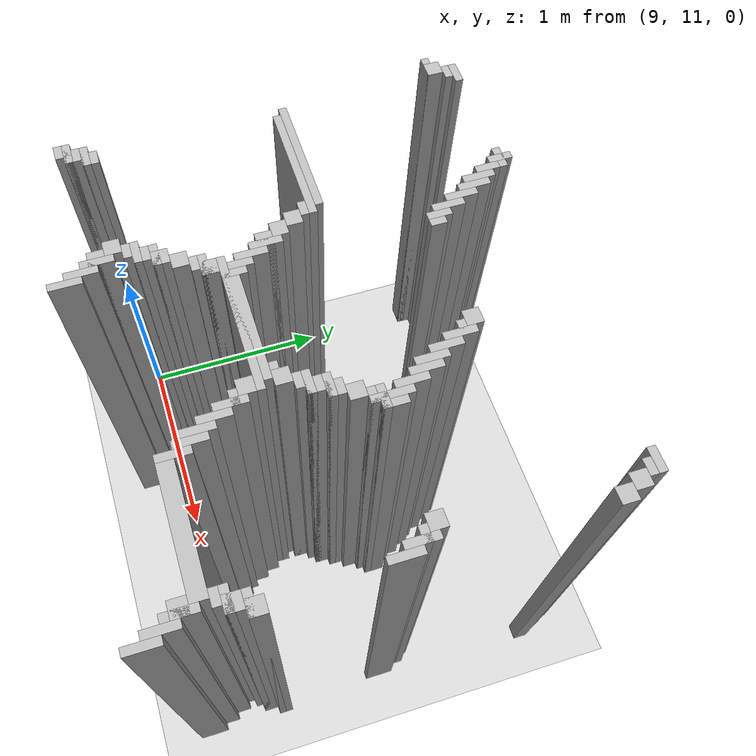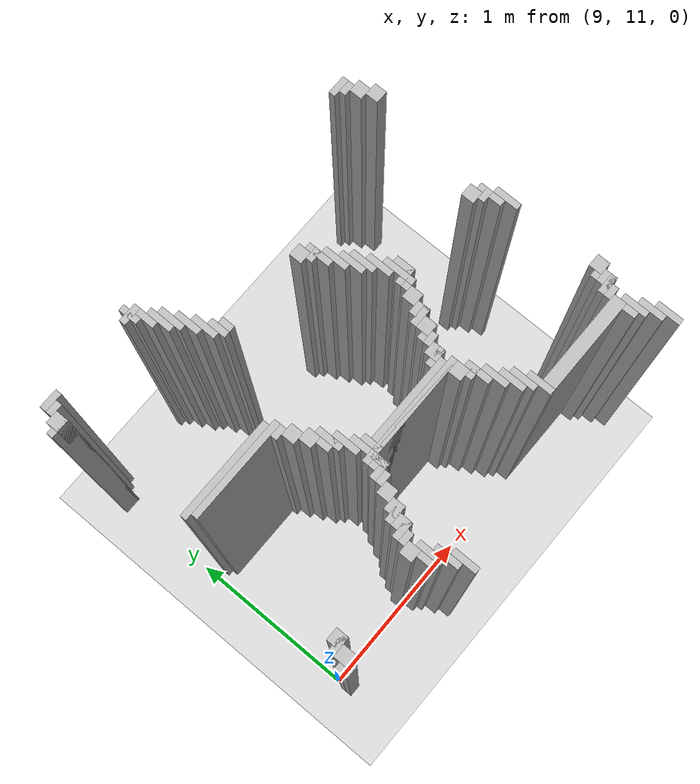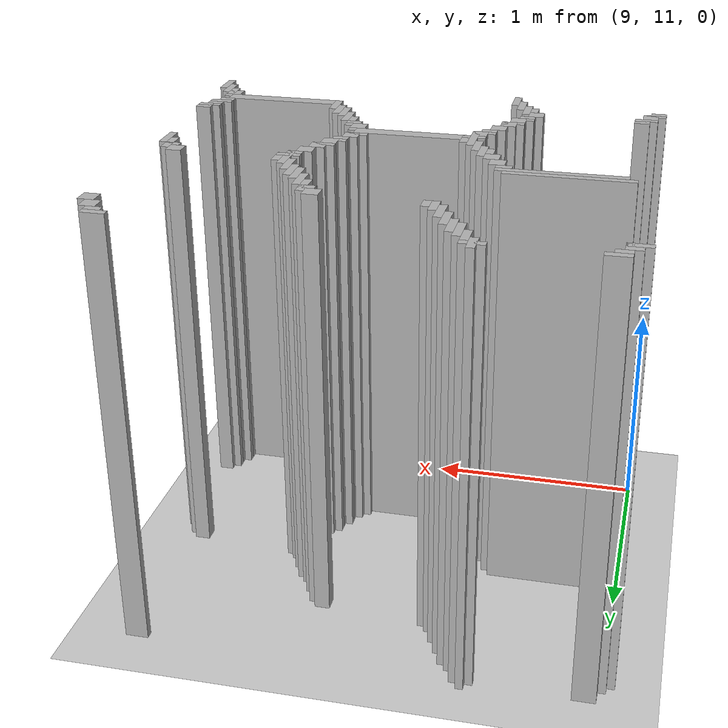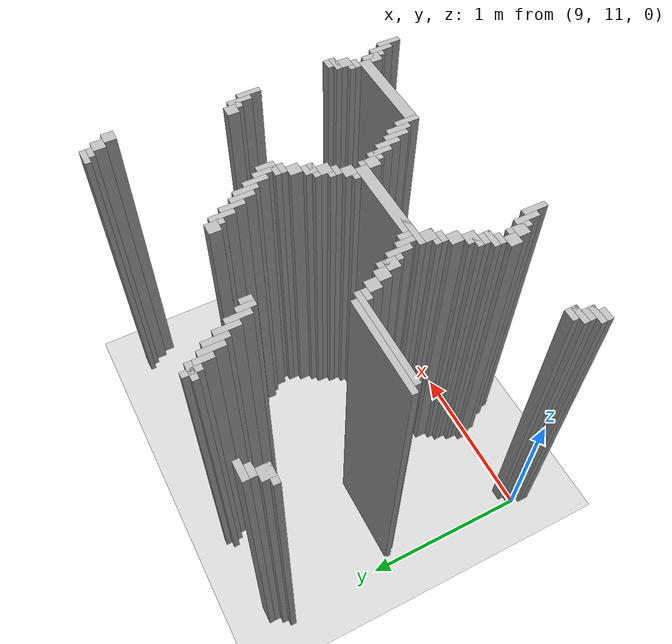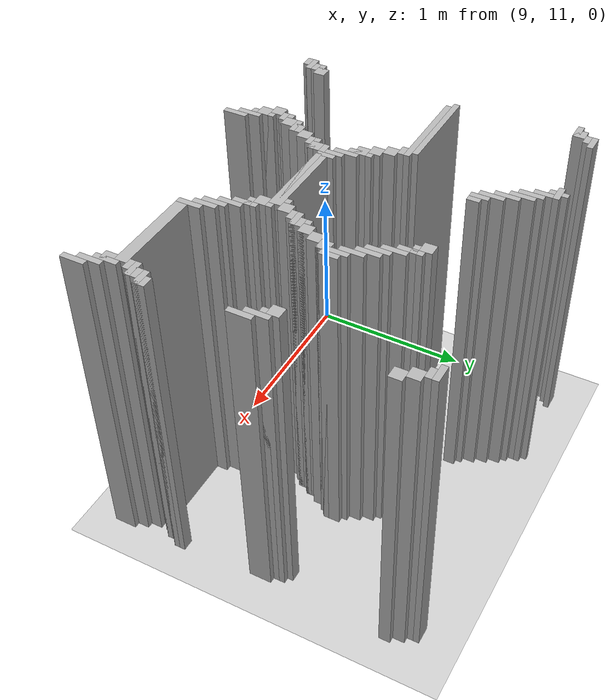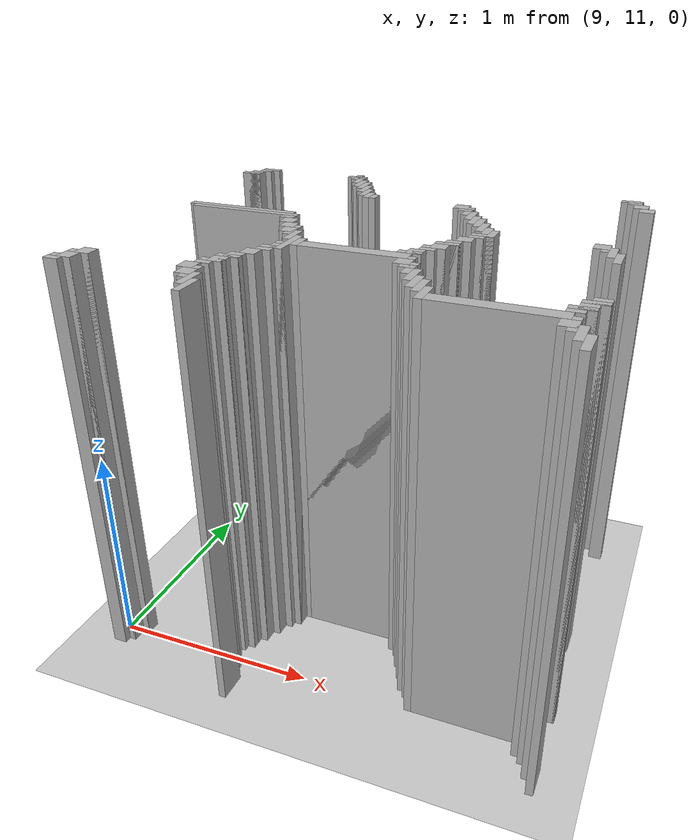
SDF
<sdf version="1.6">
 <world name="slam_world">
  <model name="ground_plane">
   <static>true</static>
   <link name="link">
    <collision name="collision">
     <geometry><plane><normal>0 0 1</normal><size>100 100</size></plane></geometry>
    </collision>
    <visual name="visual">
     <geometry><plane><normal>0 0 1</normal><size>100 100</size></plane></geometry>
     <material>
      <ambient>0.8 0.8 0.8 1</ambient>
      <diffuse>0.8 0.8 0.8 1</diffuse>
      <specular>0.8 0.8 0.8 1</specular>
     </material>
    </visual>
   </link>
  </model>
  <model name="wall_1565">
   <static>true</static>
   <pose>9.588167053364268 12.685614849187935 1.0 0 0 0</pose>
   <link name="link">
    <collision name="collision">
     <geometry><box><size>0.03480278422273782 0.10440835266821345 2.0</size></box></geometry>
    </collision>
    <visual name="visual">
     <geometry><box><size>0.03480278422273782 0.10440835266821345 2.0</size></box></geometry>
     <material><ambient>0.5 0.5 0.5 1</ambient><diffuse>0.7 0.7 0.7 1</diffuse></material>
    </visual>
   </link>
  </model>
  <model name="wall_1578">
   <static>true</static>
   <pose>9.066125290023201 12.685614849187935 1.0 0 0 0</pose>
   <link name="link">
    <collision name="collision">
     <geometry><box><size>0.10440835266821345 0.03480278422273782 2.0</size></box></geometry>
    </collision>
    <visual name="visual">
     <geometry><box><size>0.10440835266821345 0.03480278422273782 2.0</size></box></geometry>
     <material><ambient>0.5 0.5 0.5 1</ambient><diffuse>0.7 0.7 0.7 1</diffuse></material>
    </visual>
   </link>
  </model>
  <model name="wall_1579">
   <static>true</static>
   <pose>9.588167053364268 12.685614849187935 1.0 0 0 0</pose>
   <link name="link">
    <collision name="collision">
     <geometry><box><size>0.10440835266821345 0.03480278422273782 2.0</size></box></geometry>
    </collision>
    <visual name="visual">
     <geometry><box><size>0.10440835266821345 0.03480278422273782 2.0</size></box></geometry>
     <material><ambient>0.5 0.5 0.5 1</ambient><diffuse>0.7 0.7 0.7 1</diffuse></material>
    </visual>
   </link>
  </model>
  <model name="wall_1580">
   <static>true</static>
   <pose>11.049883990719257 12.685614849187935 1.0 0 0 0</pose>
   <link name="link">
    <collision name="collision">
     <geometry><box><size>0.10440835266821345 0.03480278422273782 2.0</size></box></geometry>
    </collision>
    <visual name="visual">
     <geometry><box><size>0.10440835266821345 0.03480278422273782 2.0</size></box></geometry>
     <material><ambient>0.5 0.5 0.5 1</ambient><diffuse>0.7 0.7 0.7 1</diffuse></material>
    </visual>
   </link>
  </model>
  <model name="wall_1593">
   <static>true</static>
   <pose>9.048723897911833 12.650812064965196 1.0 0 0 0</pose>
   <link name="link">
    <collision name="collision">
     <geometry><box><size>0.06960556844547564 0.03480278422273782 2.0</size></box></geometry>
    </collision>
    <visual name="visual">
     <geometry><box><size>0.06960556844547564 0.03480278422273782 2.0</size></box></geometry>
     <material><ambient>0.5 0.5 0.5 1</ambient><diffuse>0.7 0.7 0.7 1</diffuse></material>
    </visual>
   </link>
  </model>
  <model name="wall_1594">
   <static>true</static>
   <pose>9.622969837587007 12.616009280742459 1.0 0 0 0</pose>
   <link name="link">
    <collision name="collision">
     <geometry><box><size>0.03480278422273782 0.10440835266821345 2.0</size></box></geometry>
    </collision>
    <visual name="visual">
     <geometry><box><size>0.03480278422273782 0.10440835266821345 2.0</size></box></geometry>
     <material><ambient>0.5 0.5 0.5 1</ambient><diffuse>0.7 0.7 0.7 1</diffuse></material>
    </visual>
   </link>
  </model>
  <model name="wall_1595">
   <static>true</static>
   <pose>11.067285382830626 12.650812064965196 1.0 0 0 0</pose>
   <link name="link">
    <collision name="collision">
     <geometry><box><size>0.06960556844547564 0.03480278422273782 2.0</size></box></geometry>
    </collision>
    <visual name="visual">
     <geometry><box><size>0.06960556844547564 0.03480278422273782 2.0</size></box></geometry>
     <material><ambient>0.5 0.5 0.5 1</ambient><diffuse>0.7 0.7 0.7 1</diffuse></material>
    </visual>
   </link>
  </model>
  <model name="wall_1608">
   <static>true</static>
   <pose>9.013921113689095 12.59860788863109 1.0 0 0 0</pose>
   <link name="link">
    <collision name="collision">
     <geometry><box><size>0.06960556844547564 0.06960556844547564 2.0</size></box></geometry>
    </collision>
    <visual name="visual">
     <geometry><box><size>0.06960556844547564 0.06960556844547564 2.0</size></box></geometry>
     <material><ambient>0.5 0.5 0.5 1</ambient><diffuse>0.7 0.7 0.7 1</diffuse></material>
    </visual>
   </link>
  </model>
  <model name="wall_1609">
   <static>true</static>
   <pose>9.657772621809745 12.563805104408353 1.0 0 0 0</pose>
   <link name="link">
    <collision name="collision">
     <geometry><box><size>0.03480278422273782 0.13921113689095127 2.0</size></box></geometry>
    </collision>
    <visual name="visual">
     <geometry><box><size>0.03480278422273782 0.13921113689095127 2.0</size></box></geometry>
     <material><ambient>0.5 0.5 0.5 1</ambient><diffuse>0.7 0.7 0.7 1</diffuse></material>
    </visual>
   </link>
  </model>
  <model name="wall_1610">
   <static>true</static>
   <pose>11.102088167053363 12.59860788863109 1.0 0 0 0</pose>
   <link name="link">
    <collision name="collision">
     <geometry><box><size>0.06960556844547564 0.06960556844547564 2.0</size></box></geometry>
    </collision>
    <visual name="visual">
     <geometry><box><size>0.06960556844547564 0.06960556844547564 2.0</size></box></geometry>
     <material><ambient>0.5 0.5 0.5 1</ambient><diffuse>0.7 0.7 0.7 1</diffuse></material>
    </visual>
   </link>
  </model>
  <model name="wall_1625">
   <static>true</static>
   <pose>8.996519721577727 12.581206496519721 1.0 0 0 0</pose>
   <link name="link">
    <collision name="collision">
     <geometry><box><size>0.10440835266821345 0.03480278422273782 2.0</size></box></geometry>
    </collision>
    <visual name="visual">
     <geometry><box><size>0.10440835266821345 0.03480278422273782 2.0</size></box></geometry>
     <material><ambient>0.5 0.5 0.5 1</ambient><diffuse>0.7 0.7 0.7 1</diffuse></material>
    </visual>
   </link>
  </model>
  <model name="wall_1626">
   <static>true</static>
   <pose>9.692575406032482 12.529002320185615 1.0 0 0 0</pose>
   <link name="link">
    <collision name="collision">
     <geometry><box><size>0.03480278422273782 0.13921113689095127 2.0</size></box></geometry>
    </collision>
    <visual name="visual">
     <geometry><box><size>0.03480278422273782 0.13921113689095127 2.0</size></box></geometry>
     <material><ambient>0.5 0.5 0.5 1</ambient><diffuse>0.7 0.7 0.7 1</diffuse></material>
    </visual>
   </link>
  </model>
  <model name="wall_1639">
   <static>true</static>
   <pose>11.1368909512761 12.529002320185615 1.0 0 0 0</pose>
   <link name="link">
    <collision name="collision">
     <geometry><box><size>0.06960556844547564 0.06960556844547564 2.0</size></box></geometry>
    </collision>
    <visual name="visual">
     <geometry><box><size>0.06960556844547564 0.06960556844547564 2.0</size></box></geometry>
     <material><ambient>0.5 0.5 0.5 1</ambient><diffuse>0.7 0.7 0.7 1</diffuse></material>
    </visual>
   </link>
  </model>
  <model name="wall_1654">
   <static>true</static>
   <pose>9.72737819025522 12.459396751740138 1.0 0 0 0</pose>
   <link name="link">
    <collision name="collision">
     <geometry><box><size>0.03480278422273782 0.13921113689095127 2.0</size></box></geometry>
    </collision>
    <visual name="visual">
     <geometry><box><size>0.03480278422273782 0.13921113689095127 2.0</size></box></geometry>
     <material><ambient>0.5 0.5 0.5 1</ambient><diffuse>0.7 0.7 0.7 1</diffuse></material>
    </visual>
   </link>
  </model>
  <model name="wall_1680">
   <static>true</static>
   <pose>9.762180974477959 12.389791183294664 1.0 0 0 0</pose>
   <link name="link">
    <collision name="collision">
     <geometry><box><size>0.03480278422273782 0.13921113689095127 2.0</size></box></geometry>
    </collision>
    <visual name="visual">
     <geometry><box><size>0.03480278422273782 0.13921113689095127 2.0</size></box></geometry>
     <material><ambient>0.5 0.5 0.5 1</ambient><diffuse>0.7 0.7 0.7 1</diffuse></material>
    </visual>
   </link>
  </model>
  <model name="wall_1697">
   <static>true</static>
   <pose>9.796983758700696 12.337587006960556 1.0 0 0 0</pose>
   <link name="link">
    <collision name="collision">
     <geometry><box><size>0.03480278422273782 0.10440835266821345 2.0</size></box></geometry>
    </collision>
    <visual name="visual">
     <geometry><box><size>0.03480278422273782 0.10440835266821345 2.0</size></box></geometry>
     <material><ambient>0.5 0.5 0.5 1</ambient><diffuse>0.7 0.7 0.7 1</diffuse></material>
    </visual>
   </link>
  </model>
  <model name="wall_1713">
   <static>true</static>
   <pose>9.831786542923433 12.320185614849187 1.0 0 0 0</pose>
   <link name="link">
    <collision name="collision">
     <geometry><box><size>0.03480278422273782 0.06960556844547564 2.0</size></box></geometry>
    </collision>
    <visual name="visual">
     <geometry><box><size>0.03480278422273782 0.06960556844547564 2.0</size></box></geometry>
     <material><ambient>0.5 0.5 0.5 1</ambient><diffuse>0.7 0.7 0.7 1</diffuse></material>
    </visual>
   </link>
  </model>
  <model name="wall_1727">
   <static>true</static>
   <pose>10.301624129930394 12.28538283062645 1.0 0 0 0</pose>
   <link name="link">
    <collision name="collision">
     <geometry><box><size>0.06960556844547564 0.06960556844547564 2.0</size></box></geometry>
    </collision>
    <visual name="visual">
     <geometry><box><size>0.06960556844547564 0.06960556844547564 2.0</size></box></geometry>
     <material><ambient>0.5 0.5 0.5 1</ambient><diffuse>0.7 0.7 0.7 1</diffuse></material>
    </visual>
   </link>
  </model>
  <model name="wall_1743">
   <static>true</static>
   <pose>10.3538283062645 12.215777262180975 1.0 0 0 0</pose>
   <link name="link">
    <collision name="collision">
     <geometry><box><size>0.03480278422273782 0.13921113689095127 2.0</size></box></geometry>
    </collision>
    <visual name="visual">
     <geometry><box><size>0.03480278422273782 0.13921113689095127 2.0</size></box></geometry>
     <material><ambient>0.5 0.5 0.5 1</ambient><diffuse>0.7 0.7 0.7 1</diffuse></material>
    </visual>
   </link>
  </model>
  <model name="wall_1761">
   <static>true</static>
   <pose>10.336426914153131 12.233178654292344 1.0 0 0 0</pose>
   <link name="link">
    <collision name="collision">
     <geometry><box><size>0.06960556844547564 0.03480278422273782 2.0</size></box></geometry>
    </collision>
    <visual name="visual">
     <geometry><box><size>0.06960556844547564 0.03480278422273782 2.0</size></box></geometry>
     <material><ambient>0.5 0.5 0.5 1</ambient><diffuse>0.7 0.7 0.7 1</diffuse></material>
    </visual>
   </link>
  </model>
  <model name="wall_1777">
   <static>true</static>
   <pose>10.38863109048724 12.146171693735498 1.0 0 0 0</pose>
   <link name="link">
    <collision name="collision">
     <geometry><box><size>0.03480278422273782 0.13921113689095127 2.0</size></box></geometry>
    </collision>
    <visual name="visual">
     <geometry><box><size>0.03480278422273782 0.13921113689095127 2.0</size></box></geometry>
     <material><ambient>0.5 0.5 0.5 1</ambient><diffuse>0.7 0.7 0.7 1</diffuse></material>
    </visual>
   </link>
  </model>
  <model name="wall_1793">
   <static>true</static>
   <pose>10.423433874709977 12.076566125290023 1.0 0 0 0</pose>
   <link name="link">
    <collision name="collision">
     <geometry><box><size>0.03480278422273782 0.13921113689095127 2.0</size></box></geometry>
    </collision>
    <visual name="visual">
     <geometry><box><size>0.03480278422273782 0.13921113689095127 2.0</size></box></geometry>
     <material><ambient>0.5 0.5 0.5 1</ambient><diffuse>0.7 0.7 0.7 1</diffuse></material>
    </visual>
   </link>
  </model>
  <model name="wall_1809">
   <static>true</static>
   <pose>10.458236658932714 12.041763341067284 1.0 0 0 0</pose>
   <link name="link">
    <collision name="collision">
     <geometry><box><size>0.03480278422273782 0.13921113689095127 2.0</size></box></geometry>
    </collision>
    <visual name="visual">
     <geometry><box><size>0.03480278422273782 0.13921113689095127 2.0</size></box></geometry>
     <material><ambient>0.5 0.5 0.5 1</ambient><diffuse>0.7 0.7 0.7 1</diffuse></material>
    </visual>
   </link>
  </model>
  <model name="wall_1835">
   <static>true</static>
   <pose>10.493039443155451 11.97215777262181 1.0 0 0 0</pose>
   <link name="link">
    <collision name="collision">
     <geometry><box><size>0.03480278422273782 0.13921113689095127 2.0</size></box></geometry>
    </collision>
    <visual name="visual">
     <geometry><box><size>0.03480278422273782 0.13921113689095127 2.0</size></box></geometry>
     <material><ambient>0.5 0.5 0.5 1</ambient><diffuse>0.7 0.7 0.7 1</diffuse></material>
    </visual>
   </link>
  </model>
  <model name="wall_1859">
   <static>true</static>
   <pose>10.52784222737819 11.885150812064964 1.0 0 0 0</pose>
   <link name="link">
    <collision name="collision">
     <geometry><box><size>0.03480278422273782 0.17401392111368907 2.0</size></box></geometry>
    </collision>
    <visual name="visual">
     <geometry><box><size>0.03480278422273782 0.17401392111368907 2.0</size></box></geometry>
     <material><ambient>0.5 0.5 0.5 1</ambient><diffuse>0.7 0.7 0.7 1</diffuse></material>
    </visual>
   </link>
  </model>
  <model name="wall_1875">
   <static>true</static>
   <pose>10.562645011600928 11.885150812064964 1.0 0 0 0</pose>
   <link name="link">
    <collision name="collision">
     <geometry><box><size>0.03480278422273782 0.10440835266821345 2.0</size></box></geometry>
    </collision>
    <visual name="visual">
     <geometry><box><size>0.03480278422273782 0.10440835266821345 2.0</size></box></geometry>
     <material><ambient>0.5 0.5 0.5 1</ambient><diffuse>0.7 0.7 0.7 1</diffuse></material>
    </visual>
   </link>
  </model>
  <model name="wall_1885">
   <static>true</static>
   <pose>9.327146171693736 11.885150812064964 1.0 0 0 0</pose>
   <link name="link">
    <collision name="collision">
     <geometry><box><size>0.5568445475638051 0.03480278422273782 2.0</size></box></geometry>
    </collision>
    <visual name="visual">
     <geometry><box><size>0.5568445475638051 0.03480278422273782 2.0</size></box></geometry>
     <material><ambient>0.5 0.5 0.5 1</ambient><diffuse>0.7 0.7 0.7 1</diffuse></material>
    </visual>
   </link>
  </model>
  <model name="wall_1886">
   <static>true</static>
   <pose>11.032482598607888 11.867749419953595 1.0 0 0 0</pose>
   <link name="link">
    <collision name="collision">
     <geometry><box><size>0.06960556844547564 0.06960556844547564 2.0</size></box></geometry>
    </collision>
    <visual name="visual">
     <geometry><box><size>0.06960556844547564 0.06960556844547564 2.0</size></box></geometry>
     <material><ambient>0.5 0.5 0.5 1</ambient><diffuse>0.7 0.7 0.7 1</diffuse></material>
    </visual>
   </link>
  </model>
  <model name="wall_1897">
   <static>true</static>
   <pose>9.361948955916473 11.850348027842227 1.0 0 0 0</pose>
   <link name="link">
    <collision name="collision">
     <geometry><box><size>0.5568445475638051 0.03480278422273782 2.0</size></box></geometry>
    </collision>
    <visual name="visual">
     <geometry><box><size>0.5568445475638051 0.03480278422273782 2.0</size></box></geometry>
     <material><ambient>0.5 0.5 0.5 1</ambient><diffuse>0.7 0.7 0.7 1</diffuse></material>
    </visual>
   </link>
  </model>
  <model name="wall_1898">
   <static>true</static>
   <pose>10.52784222737819 11.850348027842227 1.0 0 0 0</pose>
   <link name="link">
    <collision name="collision">
     <geometry><box><size>0.10440835266821345 0.03480278422273782 2.0</size></box></geometry>
    </collision>
    <visual name="visual">
     <geometry><box><size>0.10440835266821345 0.03480278422273782 2.0</size></box></geometry>
     <material><ambient>0.5 0.5 0.5 1</ambient><diffuse>0.7 0.7 0.7 1</diffuse></material>
    </visual>
   </link>
  </model>
  <model name="wall_1899">
   <static>true</static>
   <pose>11.084686774941995 11.79814385150812 1.0 0 0 0</pose>
   <link name="link">
    <collision name="collision">
     <geometry><box><size>0.03480278422273782 0.13921113689095127 2.0</size></box></geometry>
    </collision>
    <visual name="visual">
     <geometry><box><size>0.03480278422273782 0.13921113689095127 2.0</size></box></geometry>
     <material><ambient>0.5 0.5 0.5 1</ambient><diffuse>0.7 0.7 0.7 1</diffuse></material>
    </visual>
   </link>
  </model>
  <model name="wall_1912">
   <static>true</static>
   <pose>9.605568445475638 11.81554524361949 1.0 0 0 0</pose>
   <link name="link">
    <collision name="collision">
     <geometry><box><size>0.06960556844547564 0.03480278422273782 2.0</size></box></geometry>
    </collision>
    <visual name="visual">
     <geometry><box><size>0.06960556844547564 0.03480278422273782 2.0</size></box></geometry>
     <material><ambient>0.5 0.5 0.5 1</ambient><diffuse>0.7 0.7 0.7 1</diffuse></material>
    </visual>
   </link>
  </model>
  <model name="wall_1913">
   <static>true</static>
   <pose>10.51044083526682 11.81554524361949 1.0 0 0 0</pose>
   <link name="link">
    <collision name="collision">
     <geometry><box><size>0.06960556844547564 0.03480278422273782 2.0</size></box></geometry>
    </collision>
    <visual name="visual">
     <geometry><box><size>0.06960556844547564 0.03480278422273782 2.0</size></box></geometry>
     <material><ambient>0.5 0.5 0.5 1</ambient><diffuse>0.7 0.7 0.7 1</diffuse></material>
    </visual>
   </link>
  </model>
  <model name="wall_1914">
   <static>true</static>
   <pose>11.067285382830626 11.81554524361949 1.0 0 0 0</pose>
   <link name="link">
    <collision name="collision">
     <geometry><box><size>0.06960556844547564 0.03480278422273782 2.0</size></box></geometry>
    </collision>
    <visual name="visual">
     <geometry><box><size>0.06960556844547564 0.03480278422273782 2.0</size></box></geometry>
     <material><ambient>0.5 0.5 0.5 1</ambient><diffuse>0.7 0.7 0.7 1</diffuse></material>
    </visual>
   </link>
  </model>
  <model name="wall_1928">
   <static>true</static>
   <pose>9.640371229698376 11.763341067285383 1.0 0 0 0</pose>
   <link name="link">
    <collision name="collision">
     <geometry><box><size>0.06960556844547564 0.06960556844547564 2.0</size></box></geometry>
    </collision>
    <visual name="visual">
     <geometry><box><size>0.06960556844547564 0.06960556844547564 2.0</size></box></geometry>
     <material><ambient>0.5 0.5 0.5 1</ambient><diffuse>0.7 0.7 0.7 1</diffuse></material>
    </visual>
   </link>
  </model>
  <model name="wall_1929">
   <static>true</static>
   <pose>10.475638051044083 11.763341067285383 1.0 0 0 0</pose>
   <link name="link">
    <collision name="collision">
     <geometry><box><size>0.06960556844547564 0.06960556844547564 2.0</size></box></geometry>
    </collision>
    <visual name="visual">
     <geometry><box><size>0.06960556844547564 0.06960556844547564 2.0</size></box></geometry>
     <material><ambient>0.5 0.5 0.5 1</ambient><diffuse>0.7 0.7 0.7 1</diffuse></material>
    </visual>
   </link>
  </model>
  <model name="wall_1930">
   <static>true</static>
   <pose>11.119489559164732 11.728538283062644 1.0 0 0 0</pose>
   <link name="link">
    <collision name="collision">
     <geometry><box><size>0.03480278422273782 0.13921113689095127 2.0</size></box></geometry>
    </collision>
    <visual name="visual">
     <geometry><box><size>0.03480278422273782 0.13921113689095127 2.0</size></box></geometry>
     <material><ambient>0.5 0.5 0.5 1</ambient><diffuse>0.7 0.7 0.7 1</diffuse></material>
    </visual>
   </link>
  </model>
  <model name="wall_1944">
   <static>true</static>
   <pose>9.675174013921113 11.693735498839906 1.0 0 0 0</pose>
   <link name="link">
    <collision name="collision">
     <geometry><box><size>0.06960556844547564 0.06960556844547564 2.0</size></box></geometry>
    </collision>
    <visual name="visual">
     <geometry><box><size>0.06960556844547564 0.06960556844547564 2.0</size></box></geometry>
     <material><ambient>0.5 0.5 0.5 1</ambient><diffuse>0.7 0.7 0.7 1</diffuse></material>
    </visual>
   </link>
  </model>
  <model name="wall_1945">
   <static>true</static>
   <pose>10.440835266821345 11.693735498839906 1.0 0 0 0</pose>
   <link name="link">
    <collision name="collision">
     <geometry><box><size>0.06960556844547564 0.06960556844547564 2.0</size></box></geometry>
    </collision>
    <visual name="visual">
     <geometry><box><size>0.06960556844547564 0.06960556844547564 2.0</size></box></geometry>
     <material><ambient>0.5 0.5 0.5 1</ambient><diffuse>0.7 0.7 0.7 1</diffuse></material>
    </visual>
   </link>
  </model>
  <model name="wall_1960">
   <static>true</static>
   <pose>9.72737819025522 11.624129930394432 1.0 0 0 0</pose>
   <link name="link">
    <collision name="collision">
     <geometry><box><size>0.03480278422273782 0.13921113689095127 2.0</size></box></geometry>
    </collision>
    <visual name="visual">
     <geometry><box><size>0.03480278422273782 0.13921113689095127 2.0</size></box></geometry>
     <material><ambient>0.5 0.5 0.5 1</ambient><diffuse>0.7 0.7 0.7 1</diffuse></material>
    </visual>
   </link>
  </model>
  <model name="wall_1961">
   <static>true</static>
   <pose>10.423433874709977 11.676334106728538 1.0 0 0 0</pose>
   <link name="link">
    <collision name="collision">
     <geometry><box><size>0.10440835266821345 0.03480278422273782 2.0</size></box></geometry>
    </collision>
    <visual name="visual">
     <geometry><box><size>0.10440835266821345 0.03480278422273782 2.0</size></box></geometry>
     <material><ambient>0.5 0.5 0.5 1</ambient><diffuse>0.7 0.7 0.7 1</diffuse></material>
    </visual>
   </link>
  </model>
  <model name="wall_1972">
   <static>true</static>
   <pose>9.70997679814385 11.624129930394432 1.0 0 0 0</pose>
   <link name="link">
    <collision name="collision">
     <geometry><box><size>0.06960556844547564 0.06960556844547564 2.0</size></box></geometry>
    </collision>
    <visual name="visual">
     <geometry><box><size>0.06960556844547564 0.06960556844547564 2.0</size></box></geometry>
     <material><ambient>0.5 0.5 0.5 1</ambient><diffuse>0.7 0.7 0.7 1</diffuse></material>
    </visual>
   </link>
  </model>
  <model name="wall_1973">
   <static>true</static>
   <pose>10.406032482598608 11.624129930394432 1.0 0 0 0</pose>
   <link name="link">
    <collision name="collision">
     <geometry><box><size>0.06960556844547564 0.06960556844547564 2.0</size></box></geometry>
    </collision>
    <visual name="visual">
     <geometry><box><size>0.06960556844547564 0.06960556844547564 2.0</size></box></geometry>
     <material><ambient>0.5 0.5 0.5 1</ambient><diffuse>0.7 0.7 0.7 1</diffuse></material>
    </visual>
   </link>
  </model>
  <model name="wall_1986">
   <static>true</static>
   <pose>9.762180974477959 11.554524361948955 1.0 0 0 0</pose>
   <link name="link">
    <collision name="collision">
     <geometry><box><size>0.03480278422273782 0.13921113689095127 2.0</size></box></geometry>
    </collision>
    <visual name="visual">
     <geometry><box><size>0.03480278422273782 0.13921113689095127 2.0</size></box></geometry>
     <material><ambient>0.5 0.5 0.5 1</ambient><diffuse>0.7 0.7 0.7 1</diffuse></material>
    </visual>
   </link>
  </model>
  <model name="wall_1987">
   <static>true</static>
   <pose>10.38863109048724 11.606728538283063 1.0 0 0 0</pose>
   <link name="link">
    <collision name="collision">
     <geometry><box><size>0.10440835266821345 0.03480278422273782 2.0</size></box></geometry>
    </collision>
    <visual name="visual">
     <geometry><box><size>0.10440835266821345 0.03480278422273782 2.0</size></box></geometry>
     <material><ambient>0.5 0.5 0.5 1</ambient><diffuse>0.7 0.7 0.7 1</diffuse></material>
    </visual>
   </link>
  </model>
  <model name="wall_1997">
   <static>true</static>
   <pose>10.37122969837587 11.571925754060324 1.0 0 0 0</pose>
   <link name="link">
    <collision name="collision">
     <geometry><box><size>0.06960556844547564 0.03480278422273782 2.0</size></box></geometry>
    </collision>
    <visual name="visual">
     <geometry><box><size>0.06960556844547564 0.03480278422273782 2.0</size></box></geometry>
     <material><ambient>0.5 0.5 0.5 1</ambient><diffuse>0.7 0.7 0.7 1</diffuse></material>
    </visual>
   </link>
  </model>
  <model name="wall_2009">
   <static>true</static>
   <pose>9.796983758700696 11.450116009280743 1.0 0 0 0</pose>
   <link name="link">
    <collision name="collision">
     <geometry><box><size>0.03480278422273782 0.2088167053364269 2.0</size></box></geometry>
    </collision>
    <visual name="visual">
     <geometry><box><size>0.03480278422273782 0.2088167053364269 2.0</size></box></geometry>
     <material><ambient>0.5 0.5 0.5 1</ambient><diffuse>0.7 0.7 0.7 1</diffuse></material>
    </visual>
   </link>
  </model>
  <model name="wall_2010">
   <static>true</static>
   <pose>10.336426914153131 11.519721577726218 1.0 0 0 0</pose>
   <link name="link">
    <collision name="collision">
     <geometry><box><size>0.06960556844547564 0.06960556844547564 2.0</size></box></geometry>
    </collision>
    <visual name="visual">
     <geometry><box><size>0.06960556844547564 0.06960556844547564 2.0</size></box></geometry>
     <material><ambient>0.5 0.5 0.5 1</ambient><diffuse>0.7 0.7 0.7 1</diffuse></material>
    </visual>
   </link>
  </model>
  <model name="wall_2024">
   <static>true</static>
   <pose>9.831786542923433 11.467517401392112 1.0 0 0 0</pose>
   <link name="link">
    <collision name="collision">
     <geometry><box><size>0.03480278422273782 0.10440835266821345 2.0</size></box></geometry>
    </collision>
    <visual name="visual">
     <geometry><box><size>0.03480278422273782 0.10440835266821345 2.0</size></box></geometry>
     <material><ambient>0.5 0.5 0.5 1</ambient><diffuse>0.7 0.7 0.7 1</diffuse></material>
    </visual>
   </link>
  </model>
  <model name="wall_2025">
   <static>true</static>
   <pose>10.319025522041763 11.502320185614849 1.0 0 0 0</pose>
   <link name="link">
    <collision name="collision">
     <geometry><box><size>0.10440835266821345 0.03480278422273782 2.0</size></box></geometry>
    </collision>
    <visual name="visual">
     <geometry><box><size>0.10440835266821345 0.03480278422273782 2.0</size></box></geometry>
     <material><ambient>0.5 0.5 0.5 1</ambient><diffuse>0.7 0.7 0.7 1</diffuse></material>
    </visual>
   </link>
  </model>
  <model name="wall_2039">
   <static>true</static>
   <pose>10.092807424593968 11.450116009280743 1.0 0 0 0</pose>
   <link name="link">
    <collision name="collision">
     <geometry><box><size>0.4872389791183295 0.06960556844547564 2.0</size></box></geometry>
    </collision>
    <visual name="visual">
     <geometry><box><size>0.4872389791183295 0.06960556844547564 2.0</size></box></geometry>
     <material><ambient>0.5 0.5 0.5 1</ambient><diffuse>0.7 0.7 0.7 1</diffuse></material>
    </visual>
   </link>
  </model>
  <model name="wall_2050">
   <static>true</static>
   <pose>10.058004640371228 11.432714617169372 1.0 0 0 0</pose>
   <link name="link">
    <collision name="collision">
     <geometry><box><size>0.6264501160092807 0.03480278422273782 2.0</size></box></geometry>
    </collision>
    <visual name="visual">
     <geometry><box><size>0.6264501160092807 0.03480278422273782 2.0</size></box></geometry>
     <material><ambient>0.5 0.5 0.5 1</ambient><diffuse>0.7 0.7 0.7 1</diffuse></material>
    </visual>
   </link>
  </model>
  <model name="wall_2061">
   <static>true</static>
   <pose>9.779582366589327 11.380510440835266 1.0 0 0 0</pose>
   <link name="link">
    <collision name="collision">
     <geometry><box><size>0.06960556844547564 0.06960556844547564 2.0</size></box></geometry>
    </collision>
    <visual name="visual">
     <geometry><box><size>0.06960556844547564 0.06960556844547564 2.0</size></box></geometry>
     <material><ambient>0.5 0.5 0.5 1</ambient><diffuse>0.7 0.7 0.7 1</diffuse></material>
    </visual>
   </link>
  </model>
  <model name="wall_2062">
   <static>true</static>
   <pose>10.336426914153131 11.380510440835266 1.0 0 0 0</pose>
   <link name="link">
    <collision name="collision">
     <geometry><box><size>0.06960556844547564 0.06960556844547564 2.0</size></box></geometry>
    </collision>
    <visual name="visual">
     <geometry><box><size>0.06960556844547564 0.06960556844547564 2.0</size></box></geometry>
     <material><ambient>0.5 0.5 0.5 1</ambient><diffuse>0.7 0.7 0.7 1</diffuse></material>
    </visual>
   </link>
  </model>
  <model name="wall_2073">
   <static>true</static>
   <pose>9.762180974477959 11.363109048723897 1.0 0 0 0</pose>
   <link name="link">
    <collision name="collision">
     <geometry><box><size>0.10440835266821345 0.03480278422273782 2.0</size></box></geometry>
    </collision>
    <visual name="visual">
     <geometry><box><size>0.10440835266821345 0.03480278422273782 2.0</size></box></geometry>
     <material><ambient>0.5 0.5 0.5 1</ambient><diffuse>0.7 0.7 0.7 1</diffuse></material>
    </visual>
   </link>
  </model>
  <model name="wall_2074">
   <static>true</static>
   <pose>10.38863109048724 11.310904872389791 1.0 0 0 0</pose>
   <link name="link">
    <collision name="collision">
     <geometry><box><size>0.03480278422273782 0.13921113689095127 2.0</size></box></geometry>
    </collision>
    <visual name="visual">
     <geometry><box><size>0.03480278422273782 0.13921113689095127 2.0</size></box></geometry>
     <material><ambient>0.5 0.5 0.5 1</ambient><diffuse>0.7 0.7 0.7 1</diffuse></material>
    </visual>
   </link>
  </model>
  <model name="wall_2082">
   <static>true</static>
   <pose>9.744779582366588 11.32830626450116 1.0 0 0 0</pose>
   <link name="link">
    <collision name="collision">
     <geometry><box><size>0.06960556844547564 0.03480278422273782 2.0</size></box></geometry>
    </collision>
    <visual name="visual">
     <geometry><box><size>0.06960556844547564 0.03480278422273782 2.0</size></box></geometry>
     <material><ambient>0.5 0.5 0.5 1</ambient><diffuse>0.7 0.7 0.7 1</diffuse></material>
    </visual>
   </link>
  </model>
  <model name="wall_2083">
   <static>true</static>
   <pose>10.37122969837587 11.32830626450116 1.0 0 0 0</pose>
   <link name="link">
    <collision name="collision">
     <geometry><box><size>0.06960556844547564 0.03480278422273782 2.0</size></box></geometry>
    </collision>
    <visual name="visual">
     <geometry><box><size>0.06960556844547564 0.03480278422273782 2.0</size></box></geometry>
     <material><ambient>0.5 0.5 0.5 1</ambient><diffuse>0.7 0.7 0.7 1</diffuse></material>
    </visual>
   </link>
  </model>
  <model name="wall_2093">
   <static>true</static>
   <pose>9.70997679814385 11.276102088167052 1.0 0 0 0</pose>
   <link name="link">
    <collision name="collision">
     <geometry><box><size>0.06960556844547564 0.06960556844547564 2.0</size></box></geometry>
    </collision>
    <visual name="visual">
     <geometry><box><size>0.06960556844547564 0.06960556844547564 2.0</size></box></geometry>
     <material><ambient>0.5 0.5 0.5 1</ambient><diffuse>0.7 0.7 0.7 1</diffuse></material>
    </visual>
   </link>
  </model>
  <model name="wall_2094">
   <static>true</static>
   <pose>10.423433874709977 11.241299303944315 1.0 0 0 0</pose>
   <link name="link">
    <collision name="collision">
     <geometry><box><size>0.03480278422273782 0.13921113689095127 2.0</size></box></geometry>
    </collision>
    <visual name="visual">
     <geometry><box><size>0.03480278422273782 0.13921113689095127 2.0</size></box></geometry>
     <material><ambient>0.5 0.5 0.5 1</ambient><diffuse>0.7 0.7 0.7 1</diffuse></material>
    </visual>
   </link>
  </model>
  <model name="wall_2105">
   <static>true</static>
   <pose>9.675174013921113 11.206496519721577 1.0 0 0 0</pose>
   <link name="link">
    <collision name="collision">
     <geometry><box><size>0.06960556844547564 0.06960556844547564 2.0</size></box></geometry>
    </collision>
    <visual name="visual">
     <geometry><box><size>0.06960556844547564 0.06960556844547564 2.0</size></box></geometry>
     <material><ambient>0.5 0.5 0.5 1</ambient><diffuse>0.7 0.7 0.7 1</diffuse></material>
    </visual>
   </link>
  </model>
  <model name="wall_2106">
   <static>true</static>
   <pose>10.458236658932714 11.17169373549884 1.0 0 0 0</pose>
   <link name="link">
    <collision name="collision">
     <geometry><box><size>0.03480278422273782 0.13921113689095127 2.0</size></box></geometry>
    </collision>
    <visual name="visual">
     <geometry><box><size>0.03480278422273782 0.13921113689095127 2.0</size></box></geometry>
     <material><ambient>0.5 0.5 0.5 1</ambient><diffuse>0.7 0.7 0.7 1</diffuse></material>
    </visual>
   </link>
  </model>
  <model name="wall_2107">
   <static>true</static>
   <pose>11.1368909512761 11.206496519721577 1.0 0 0 0</pose>
   <link name="link">
    <collision name="collision">
     <geometry><box><size>0.06960556844547564 0.06960556844547564 2.0</size></box></geometry>
    </collision>
    <visual name="visual">
     <geometry><box><size>0.06960556844547564 0.06960556844547564 2.0</size></box></geometry>
     <material><ambient>0.5 0.5 0.5 1</ambient><diffuse>0.7 0.7 0.7 1</diffuse></material>
    </visual>
   </link>
  </model>
  <model name="wall_2117">
   <static>true</static>
   <pose>9.657772621809745 11.189095127610209 1.0 0 0 0</pose>
   <link name="link">
    <collision name="collision">
     <geometry><box><size>0.10440835266821345 0.03480278422273782 2.0</size></box></geometry>
    </collision>
    <visual name="visual">
     <geometry><box><size>0.10440835266821345 0.03480278422273782 2.0</size></box></geometry>
     <material><ambient>0.5 0.5 0.5 1</ambient><diffuse>0.7 0.7 0.7 1</diffuse></material>
    </visual>
   </link>
  </model>
  <model name="wall_2118">
   <static>true</static>
   <pose>10.493039443155451 11.1368909512761 1.0 0 0 0</pose>
   <link name="link">
    <collision name="collision">
     <geometry><box><size>0.03480278422273782 0.13921113689095127 2.0</size></box></geometry>
    </collision>
    <visual name="visual">
     <geometry><box><size>0.03480278422273782 0.13921113689095127 2.0</size></box></geometry>
     <material><ambient>0.5 0.5 0.5 1</ambient><diffuse>0.7 0.7 0.7 1</diffuse></material>
    </visual>
   </link>
  </model>
  <model name="wall_2119">
   <static>true</static>
   <pose>11.119489559164732 11.189095127610209 1.0 0 0 0</pose>
   <link name="link">
    <collision name="collision">
     <geometry><box><size>0.10440835266821345 0.03480278422273782 2.0</size></box></geometry>
    </collision>
    <visual name="visual">
     <geometry><box><size>0.10440835266821345 0.03480278422273782 2.0</size></box></geometry>
     <material><ambient>0.5 0.5 0.5 1</ambient><diffuse>0.7 0.7 0.7 1</diffuse></material>
    </visual>
   </link>
  </model>
  <model name="wall_2126">
   <static>true</static>
   <pose>9.640371229698376 11.1368909512761 1.0 0 0 0</pose>
   <link name="link">
    <collision name="collision">
     <geometry><box><size>0.06960556844547564 0.06960556844547564 2.0</size></box></geometry>
    </collision>
    <visual name="visual">
     <geometry><box><size>0.06960556844547564 0.06960556844547564 2.0</size></box></geometry>
     <material><ambient>0.5 0.5 0.5 1</ambient><diffuse>0.7 0.7 0.7 1</diffuse></material>
    </visual>
   </link>
  </model>
  <model name="wall_2127">
   <static>true</static>
   <pose>11.102088167053363 11.1368909512761 1.0 0 0 0</pose>
   <link name="link">
    <collision name="collision">
     <geometry><box><size>0.06960556844547564 0.06960556844547564 2.0</size></box></geometry>
    </collision>
    <visual name="visual">
     <geometry><box><size>0.06960556844547564 0.06960556844547564 2.0</size></box></geometry>
     <material><ambient>0.5 0.5 0.5 1</ambient><diffuse>0.7 0.7 0.7 1</diffuse></material>
    </visual>
   </link>
  </model>
  <model name="wall_2136">
   <static>true</static>
   <pose>9.622969837587007 11.119489559164732 1.0 0 0 0</pose>
   <link name="link">
    <collision name="collision">
     <geometry><box><size>0.10440835266821345 0.03480278422273782 2.0</size></box></geometry>
    </collision>
    <visual name="visual">
     <geometry><box><size>0.10440835266821345 0.03480278422273782 2.0</size></box></geometry>
     <material><ambient>0.5 0.5 0.5 1</ambient><diffuse>0.7 0.7 0.7 1</diffuse></material>
    </visual>
   </link>
  </model>
  <model name="wall_2137">
   <static>true</static>
   <pose>10.52784222737819 11.067285382830626 1.0 0 0 0</pose>
   <link name="link">
    <collision name="collision">
     <geometry><box><size>0.03480278422273782 0.13921113689095127 2.0</size></box></geometry>
    </collision>
    <visual name="visual">
     <geometry><box><size>0.03480278422273782 0.13921113689095127 2.0</size></box></geometry>
     <material><ambient>0.5 0.5 0.5 1</ambient><diffuse>0.7 0.7 0.7 1</diffuse></material>
    </visual>
   </link>
  </model>
  <model name="wall_2138">
   <static>true</static>
   <pose>11.084686774941995 11.119489559164732 1.0 0 0 0</pose>
   <link name="link">
    <collision name="collision">
     <geometry><box><size>0.10440835266821345 0.03480278422273782 2.0</size></box></geometry>
    </collision>
    <visual name="visual">
     <geometry><box><size>0.10440835266821345 0.03480278422273782 2.0</size></box></geometry>
     <material><ambient>0.5 0.5 0.5 1</ambient><diffuse>0.7 0.7 0.7 1</diffuse></material>
    </visual>
   </link>
  </model>
  <model name="wall_2145">
   <static>true</static>
   <pose>9.605568445475638 11.084686774941995 1.0 0 0 0</pose>
   <link name="link">
    <collision name="collision">
     <geometry><box><size>0.06960556844547564 0.03480278422273782 2.0</size></box></geometry>
    </collision>
    <visual name="visual">
     <geometry><box><size>0.06960556844547564 0.03480278422273782 2.0</size></box></geometry>
     <material><ambient>0.5 0.5 0.5 1</ambient><diffuse>0.7 0.7 0.7 1</diffuse></material>
    </visual>
   </link>
  </model>
  <model name="wall_2146">
   <static>true</static>
   <pose>11.067285382830626 11.084686774941995 1.0 0 0 0</pose>
   <link name="link">
    <collision name="collision">
     <geometry><box><size>0.06960556844547564 0.03480278422273782 2.0</size></box></geometry>
    </collision>
    <visual name="visual">
     <geometry><box><size>0.06960556844547564 0.03480278422273782 2.0</size></box></geometry>
     <material><ambient>0.5 0.5 0.5 1</ambient><diffuse>0.7 0.7 0.7 1</diffuse></material>
    </visual>
   </link>
  </model>
  <model name="wall_2155">
   <static>true</static>
   <pose>9.08352668213457 11.032482598607888 1.0 0 0 0</pose>
   <link name="link">
    <collision name="collision">
     <geometry><box><size>0.06960556844547564 0.06960556844547564 2.0</size></box></geometry>
    </collision>
    <visual name="visual">
     <geometry><box><size>0.06960556844547564 0.06960556844547564 2.0</size></box></geometry>
     <material><ambient>0.5 0.5 0.5 1</ambient><diffuse>0.7 0.7 0.7 1</diffuse></material>
    </visual>
   </link>
  </model>
  <model name="wall_2156">
   <static>true</static>
   <pose>9.5707656612529 11.032482598607888 1.0 0 0 0</pose>
   <link name="link">
    <collision name="collision">
     <geometry><box><size>0.06960556844547564 0.06960556844547564 2.0</size></box></geometry>
    </collision>
    <visual name="visual">
     <geometry><box><size>0.06960556844547564 0.06960556844547564 2.0</size></box></geometry>
     <material><ambient>0.5 0.5 0.5 1</ambient><diffuse>0.7 0.7 0.7 1</diffuse></material>
    </visual>
   </link>
  </model>
  <model name="wall_2157">
   <static>true</static>
   <pose>10.806264501160092 11.032482598607888 1.0 0 0 0</pose>
   <link name="link">
    <collision name="collision">
     <geometry><box><size>0.5220417633410672 0.06960556844547564 2.0</size></box></geometry>
    </collision>
    <visual name="visual">
     <geometry><box><size>0.5220417633410672 0.06960556844547564 2.0</size></box></geometry>
     <material><ambient>0.5 0.5 0.5 1</ambient><diffuse>0.7 0.7 0.7 1</diffuse></material>
    </visual>
   </link>
  </model>
  <model name="wall_2167">
   <static>true</static>
   <pose>9.066125290023201 11.01508120649652 1.0 0 0 0</pose>
   <link name="link">
    <collision name="collision">
     <geometry><box><size>0.10440835266821345 0.03480278422273782 2.0</size></box></geometry>
    </collision>
    <visual name="visual">
     <geometry><box><size>0.10440835266821345 0.03480278422273782 2.0</size></box></geometry>
     <material><ambient>0.5 0.5 0.5 1</ambient><diffuse>0.7 0.7 0.7 1</diffuse></material>
    </visual>
   </link>
  </model>
  <model name="wall_2168">
   <static>true</static>
   <pose>9.622969837587007 10.962877030162412 1.0 0 0 0</pose>
   <link name="link">
    <collision name="collision">
     <geometry><box><size>0.03480278422273782 0.13921113689095127 2.0</size></box></geometry>
    </collision>
    <visual name="visual">
     <geometry><box><size>0.03480278422273782 0.13921113689095127 2.0</size></box></geometry>
     <material><ambient>0.5 0.5 0.5 1</ambient><diffuse>0.7 0.7 0.7 1</diffuse></material>
    </visual>
   </link>
  </model>
  <model name="wall_2169">
   <static>true</static>
   <pose>11.084686774941995 10.962877030162412 1.0 0 0 0</pose>
   <link name="link">
    <collision name="collision">
     <geometry><box><size>0.03480278422273782 0.13921113689095127 2.0</size></box></geometry>
    </collision>
    <visual name="visual">
     <geometry><box><size>0.03480278422273782 0.13921113689095127 2.0</size></box></geometry>
     <material><ambient>0.5 0.5 0.5 1</ambient><diffuse>0.7 0.7 0.7 1</diffuse></material>
    </visual>
   </link>
  </model>
  <model name="wall_2181">
   <static>true</static>
   <pose>9.048723897911833 10.962877030162412 1.0 0 0 0</pose>
   <link name="link">
    <collision name="collision">
     <geometry><box><size>0.06960556844547564 0.06960556844547564 2.0</size></box></geometry>
    </collision>
    <visual name="visual">
     <geometry><box><size>0.06960556844547564 0.06960556844547564 2.0</size></box></geometry>
     <material><ambient>0.5 0.5 0.5 1</ambient><diffuse>0.7 0.7 0.7 1</diffuse></material>
    </visual>
   </link>
  </model>
  <model name="wall_2182">
   <static>true</static>
   <pose>9.605568445475638 10.962877030162412 1.0 0 0 0</pose>
   <link name="link">
    <collision name="collision">
     <geometry><box><size>0.06960556844547564 0.06960556844547564 2.0</size></box></geometry>
    </collision>
    <visual name="visual">
     <geometry><box><size>0.06960556844547564 0.06960556844547564 2.0</size></box></geometry>
     <material><ambient>0.5 0.5 0.5 1</ambient><diffuse>0.7 0.7 0.7 1</diffuse></material>
    </visual>
   </link>
  </model>
  <model name="wall_2183">
   <static>true</static>
   <pose>11.067285382830626 10.962877030162412 1.0 0 0 0</pose>
   <link name="link">
    <collision name="collision">
     <geometry><box><size>0.06960556844547564 0.06960556844547564 2.0</size></box></geometry>
    </collision>
    <visual name="visual">
     <geometry><box><size>0.06960556844547564 0.06960556844547564 2.0</size></box></geometry>
     <material><ambient>0.5 0.5 0.5 1</ambient><diffuse>0.7 0.7 0.7 1</diffuse></material>
    </visual>
   </link>
  </model>
  <model name="wall_2196">
   <static>true</static>
   <pose>9.031322505800464 10.945475638051043 1.0 0 0 0</pose>
   <link name="link">
    <collision name="collision">
     <geometry><box><size>0.10440835266821345 0.03480278422273782 2.0</size></box></geometry>
    </collision>
    <visual name="visual">
     <geometry><box><size>0.10440835266821345 0.03480278422273782 2.0</size></box></geometry>
     <material><ambient>0.5 0.5 0.5 1</ambient><diffuse>0.7 0.7 0.7 1</diffuse></material>
    </visual>
   </link>
  </model>
  <model name="wall_2197">
   <static>true</static>
   <pose>9.657772621809745 10.893271461716937 1.0 0 0 0</pose>
   <link name="link">
    <collision name="collision">
     <geometry><box><size>0.03480278422273782 0.13921113689095127 2.0</size></box></geometry>
    </collision>
    <visual name="visual">
     <geometry><box><size>0.03480278422273782 0.13921113689095127 2.0</size></box></geometry>
     <material><ambient>0.5 0.5 0.5 1</ambient><diffuse>0.7 0.7 0.7 1</diffuse></material>
    </visual>
   </link>
  </model>
  <model name="wall_2198">
   <static>true</static>
   <pose>11.119489559164732 10.893271461716937 1.0 0 0 0</pose>
   <link name="link">
    <collision name="collision">
     <geometry><box><size>0.03480278422273782 0.13921113689095127 2.0</size></box></geometry>
    </collision>
    <visual name="visual">
     <geometry><box><size>0.03480278422273782 0.13921113689095127 2.0</size></box></geometry>
     <material><ambient>0.5 0.5 0.5 1</ambient><diffuse>0.7 0.7 0.7 1</diffuse></material>
    </visual>
   </link>
  </model>
  <model name="wall_2209">
   <static>true</static>
   <pose>9.013921113689095 10.910672853828306 1.0 0 0 0</pose>
   <link name="link">
    <collision name="collision">
     <geometry><box><size>0.06960556844547564 0.03480278422273782 2.0</size></box></geometry>
    </collision>
    <visual name="visual">
     <geometry><box><size>0.06960556844547564 0.03480278422273782 2.0</size></box></geometry>
     <material><ambient>0.5 0.5 0.5 1</ambient><diffuse>0.7 0.7 0.7 1</diffuse></material>
    </visual>
   </link>
  </model>
  <model name="wall_2222">
   <static>true</static>
   <pose>9.692575406032482 10.82366589327146 1.0 0 0 0</pose>
   <link name="link">
    <collision name="collision">
     <geometry><box><size>0.03480278422273782 0.13921113689095127 2.0</size></box></geometry>
    </collision>
    <visual name="visual">
     <geometry><box><size>0.03480278422273782 0.13921113689095127 2.0</size></box></geometry>
     <material><ambient>0.5 0.5 0.5 1</ambient><diffuse>0.7 0.7 0.7 1</diffuse></material>
    </visual>
   </link>
  </model>
  <model name="wall_2223">
   <static>true</static>
   <pose>11.154292343387471 10.82366589327146 1.0 0 0 0</pose>
   <link name="link">
    <collision name="collision">
     <geometry><box><size>0.03480278422273782 0.13921113689095127 2.0</size></box></geometry>
    </collision>
    <visual name="visual">
     <geometry><box><size>0.03480278422273782 0.13921113689095127 2.0</size></box></geometry>
     <material><ambient>0.5 0.5 0.5 1</ambient><diffuse>0.7 0.7 0.7 1</diffuse></material>
    </visual>
   </link>
  </model>
 </world>
</sdf>
